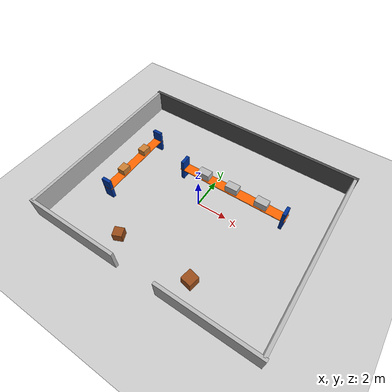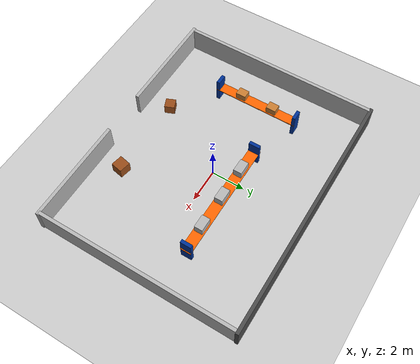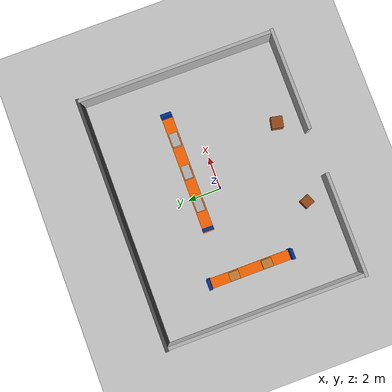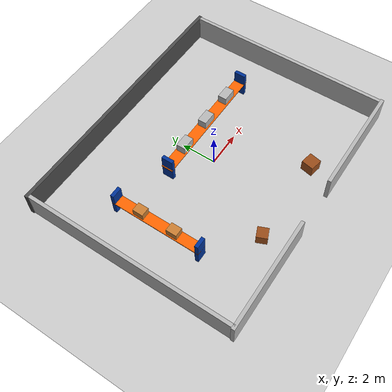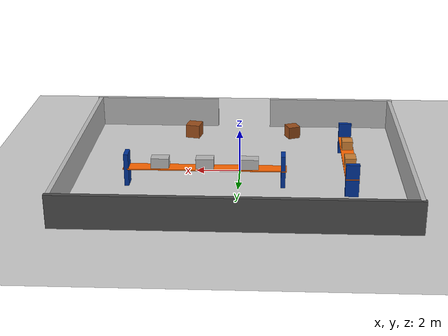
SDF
<?xml version="1.0"?>
<sdf version="1.6">
  <world name="industrial_warehouse_final_huy">
    <include><uri>model://ground_plane</uri></include>
    <include><uri>model://sun</uri></include>

    <!-- ===== TƯỜNG BAO (CHỪA CỬA Ở PHÍA NAM) ===== -->
    <model name="outer_walls">
      <static>true</static>
      <link name="walls">
        <visual name="n"><pose>0 6 0.75 0 0 0</pose><geometry><box><size>15.3 0.2 1.5</size></box></geometry><material><ambient>0.3 0.3 0.3 1</ambient></material></visual>
        <collision name="n_c"><pose>0 6 0.75 0 0 0</pose><geometry><box><size>15.3 0.2 1.5</size></box></geometry></collision>

        <!-- Tường Nam chia làm 2 đoạn để hở cửa 3m ở giữa -->
        <visual name="s1"><pose>-4.5 -6 0.75 0 0 0</pose><geometry><box><size>6.3 0.2 1.5</size></box></geometry></visual>
        <visual name="s2"><pose>4.5 -6 0.75 0 0 0</pose><geometry><box><size>6.3 0.2 1.5</size></box></geometry></visual>
        <collision name="s1_c"><pose>-4.5 -6 0.75 0 0 0</pose><geometry><box><size>6.3 0.2 1.5</size></box></geometry></collision>
        <collision name="s2_c"><pose>4.5 -6 0.75 0 0 0</pose><geometry><box><size>6.3 0.2 1.5</size></box></geometry></collision>

        <visual name="e"><pose>7.5 0 0.75 0 0 0</pose><geometry><box><size>0.2 12 1.5</size></box></geometry></visual>
        <collision name="e_c"><pose>7.5 0 0.75 0 0 0</pose><geometry><box><size>0.2 12 1.5</size></box></geometry></collision>
        <visual name="w"><pose>-7.5 0 0.75 0 0 0</pose><geometry><box><size>0.2 12 1.5</size></box></geometry></visual>
        <collision name="w_c"><pose>-7.5 0 0.75 0 0 0</pose><geometry><box><size>0.2 12 1.5</size></box></geometry></collision>
      </link>
    </model>

    <!-- ===== KỆ MỚI BÊN TRÁI (WEST RACK) ===== -->
    <model name="left_rack">
      <static>true</static>
      <pose>-5 0 0 0 0 1.5708</pose>
      <link name="link">
        <visual name="l1"><pose>-2.5 0 0.75 0 0 0</pose><geometry><box><size>0.2 0.6 1.5</size></box></geometry><material><ambient>0 0.2 0.6 1</ambient></material></visual>
        <collision name="l1_c"><pose>-2.5 0 0.75 0 0 0</pose><geometry><box><size>0.2 0.6 1.5</size></box></geometry></collision>
        <visual name="l2"><pose>2.5 0 0.75 0 0 0</pose><geometry><box><size>0.2 0.6 1.5</size></box></geometry><material><ambient>0 0.2 0.6 1</ambient></material></visual>
        <collision name="l2_c"><pose>2.5 0 0.75 0 0 0</pose><geometry><box><size>0.2 0.6 1.5</size></box></geometry></collision>
        <visual name="beam"><pose>0 0 0.8 0 0 0</pose><geometry><box><size>5.2 0.6 0.05</size></box></geometry><material><ambient>1 0.4 0 1</ambient></material></visual>
        <collision name="beam_c"><pose>0 0 0.8 0 0 0</pose><geometry><box><size>5.2 0.6 0.05</size></box></geometry></collision>

        <!-- Thùng hàng trên kệ trái -->
        <visual name="box1"><pose>-1 0 1.05 0 0 0</pose><geometry><box><size>0.6 0.5 0.4</size></box></geometry><material><ambient>0.8 0.5 0.2 1</ambient></material></visual>
        <collision name="box1_c"><pose>-1 0 1.05 0 0 0</pose><geometry><box><size>0.6 0.5 0.4</size></box></geometry></collision>
        <visual name="box2"><pose>1 0 1.05 0 0 0</pose><geometry><box><size>0.6 0.5 0.4</size></box></geometry><material><ambient>0.8 0.5 0.2 1</ambient></material></visual>
        <collision name="box2_c"><pose>1 0 1.05 0 0 0</pose><geometry><box><size>0.6 0.5 0.4</size></box></geometry></collision>
      </link>
    </model>

    <!-- ===== KỆ GIỮA VỚI NHIỀU THÙNG HÀNG ===== -->
    <model name="heavy_rack_middle">
      <static>true</static>
      <pose>1.5 1.5 0 0 0 0</pose>
      <link name="link">
        <visual name="l1"><pose>-3.5 0 0.75 0 0 0</pose><geometry><box><size>0.2 0.65 1.5</size></box></geometry><material><ambient>0 0.2 0.6 1</ambient></material></visual>
        <visual name="l2"><pose>3.5 0 0.75 0 0 0</pose><geometry><box><size>0.2 0.65 1.5</size></box></geometry><material><ambient>0 0.2 0.6 1</ambient></material></visual>
        <visual name="beam"><pose>0 0 0.8 0 0 0</pose><geometry><box><size>7.3 0.65 0.05</size></box></geometry><material><ambient>1 0.4 0 1</ambient></material></visual>
        <collision name="beam_c"><pose>0 0 0.8 0 0 0</pose><geometry><box><size>7.3 0.65 0.05</size></box></geometry></collision>

        <!-- Xếp 3 thùng hàng lên kệ -->
        <visual name="b1"><pose>-2 0 1.05 0 0 0</pose><geometry><box><size>0.8 0.5 0.5</size></box></geometry></visual>
        <collision name="b1_c"><pose>-2 0 1.05 0 0 0</pose><geometry><box><size>0.8 0.5 0.5</size></box></geometry></collision>
        <visual name="b2"><pose>0 0 1.05 0 0 0</pose><geometry><box><size>0.8 0.5 0.5</size></box></geometry></visual>
        <collision name="b2_c"><pose>0 0 1.05 0 0 0</pose><geometry><box><size>0.8 0.5 0.5</size></box></geometry></collision>
        <visual name="b3"><pose>2 0 1.05 0 0 0</pose><geometry><box><size>0.8 0.5 0.5</size></box></geometry></visual>
        <collision name="b3_c"><pose>2 0 1.05 0 0 0</pose><geometry><box><size>0.8 0.5 0.5</size></box></geometry></collision>
      </link>
    </model>

    <!-- ===== CÁC THÙNG HÀNG TẬP TRUNG GẦN CỬA (KHÔNG CHẶN CỬA) ===== -->
    <model name="entry_cargo_cluster">
      <static>true</static>
      <pose>0 -4.5 0 0 0 0</pose>
      <link name="cluster">
        <!-- Cụm bên trái cửa -->
        <visual name="c1"><pose>-2.5 0 0.3 0 0 0.4</pose><geometry><box><size>0.6 0.6 0.6</size></box></geometry><material><ambient>0.6 0.3 0.1 1</ambient></material></visual>
        <collision name="c1_c"><pose>-2.5 0 0.3 0 0 0.4</pose><geometry><box><size>0.6 0.6 0.6</size></box></geometry></collision>

        <!-- C cụm bên phải cửa -->
        <visual name="c2"><pose>2.5 0 0.3 0 0 -0.2</pose><geometry><box><size>0.7 0.7 0.7</size></box></geometry><material><ambient>0.6 0.3 0.1 1</ambient></material></visual>
        <collision name="c2_c"><pose>2.5 0 0.3 0 0 -0.2</pose><geometry><box><size>0.7 0.7 0.7</size></box></geometry></collision>
      </link>
    </model>

  </world>
</sdf>
